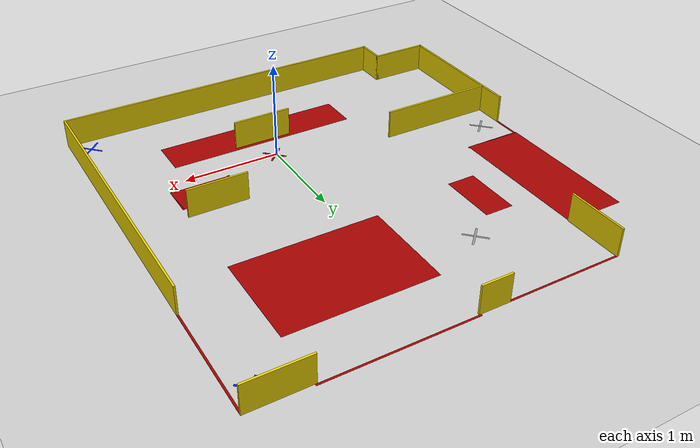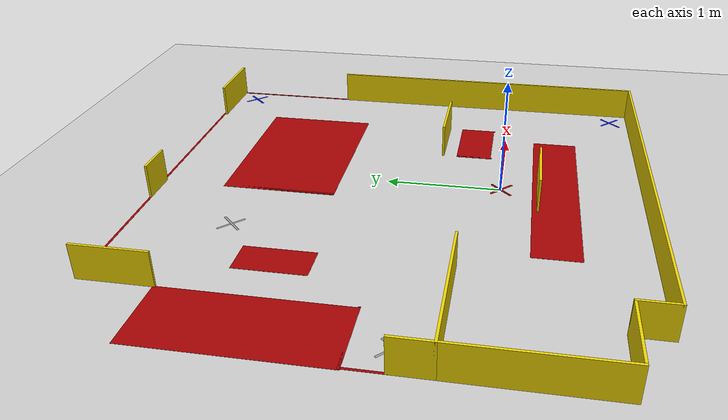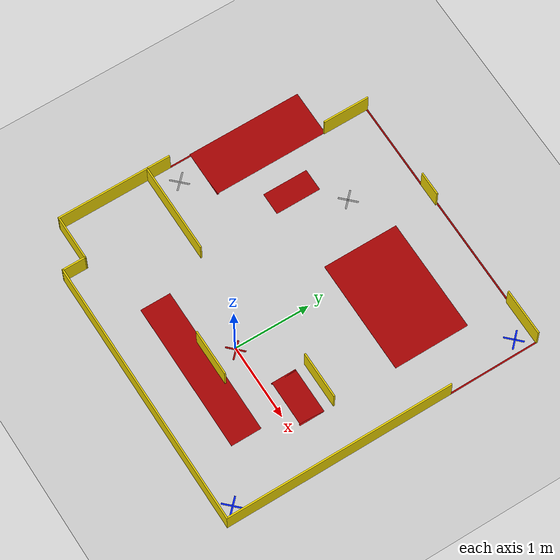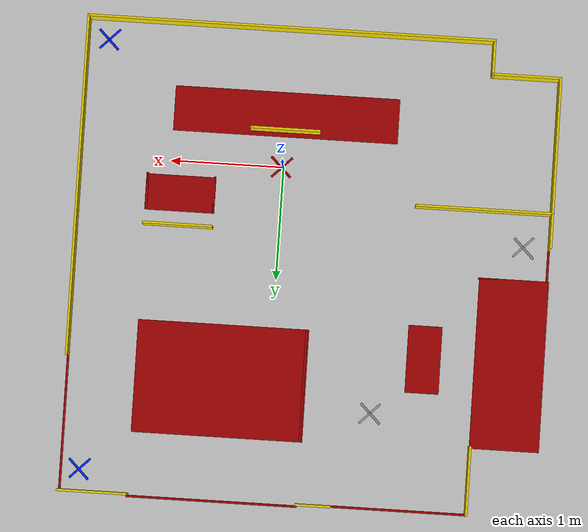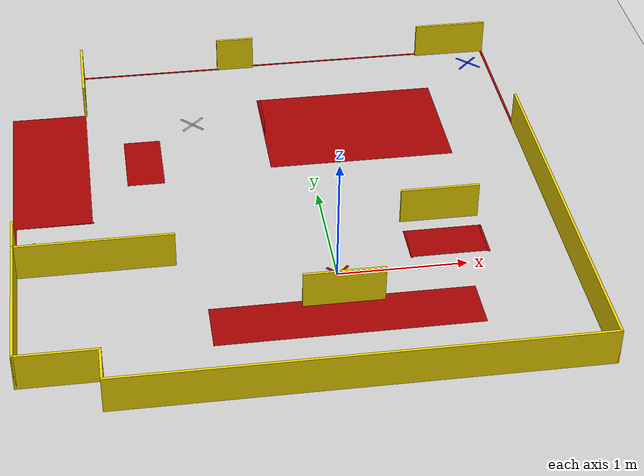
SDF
<sdf version="1.7">
 <world name="default">
  <scene><ambient>0.4 0.4 0.4 1</ambient><background>0.7 0.7 0.7 1</background><shadows>1</shadows></scene>
  <light name="sun" type="directional">
   <pose>0 0 10 0 -0 0</pose>
   <diffuse>0.8 0.8 0.8 1</diffuse>
   <specular>0.2 0.2 0.2 1</specular>
   <attenuation>
    <range>1000</range>
    <constant>0.9</constant>
    <linear>0.01</linear>
    <quadratic>0.001</quadratic>
   </attenuation>
   <direction>-0.5 0.1 -0.9</direction>
   <spot><inner_angle>0</inner_angle><outer_angle>0</outer_angle><falloff>0</falloff></spot>
  </light>
  <model name="ground_plane">
   <static>1</static>
   <link name="link">
    <collision name="collision">
     <geometry><plane><normal>0 0 1</normal><size>100 100</size></plane></geometry>
     <surface>
      <contact><collide_bitmask>65535</collide_bitmask></contact>
      <friction><ode><mu>100</mu><mu2>50</mu2></ode></friction>
     </surface>
    </collision>
    <visual name="visual">
     <cast_shadows>0</cast_shadows>
     <geometry><plane><normal>0 0 1</normal><size>100 100</size></plane></geometry>
     <material>
      <script><uri>file://media/materials/scripts/gazebo.material</uri><name>Gazebo/Grey</name></script>
     </material>
    </visual>
   </link>
  </model>
  <physics type="ode">
   <real_time_update_rate>1000</real_time_update_rate>
   <max_step_size>0.001</max_step_size>
   <real_time_factor>1</real_time_factor>
   <ode>
    <solver>
     <type>quick</type>
     <iters>150</iters>
     <precon_iters>0</precon_iters>
     <sor>1.4</sor>
     <use_dynamic_moi_rescaling>1</use_dynamic_moi_rescaling>
    </solver>
    <constraints>
     <cfm>1e-05</cfm>
     <erp>0.2</erp>
     <contact_max_correcting_vel>2000</contact_max_correcting_vel>
     <contact_surface_layer>0.01</contact_surface_layer>
    </constraints>
   </ode>
  </physics>
  <gravity>0 0 -9.8</gravity>
  <magnetic_field>6e-06 2.3e-05 -4.2e-05</magnetic_field>
  <atmosphere type="adiabatic"/>
  <spherical_coordinates>
   <surface_model>EARTH_WGS84</surface_model>
   <latitude_deg>0</latitude_deg>
   <longitude_deg>0</longitude_deg>
   <elevation>0</elevation>
   <heading_deg>0</heading_deg>
  </spherical_coordinates>
  <model name="Project2_Map">
   <pose>-0.301796 1.22065 -0 0 -0 0</pose>
   <link name="Wall_0">
    <collision name="Wall_0_Collision">
     <geometry><box><size>3.02 0.02 0.3</size></box></geometry>
     <pose>0 0 0.15 0 -0 0</pose>
    </collision>
    <visual name="Wall_0_Visual">
     <pose>0 0 0.15 0 -0 0</pose>
     <geometry><box><size>3.02 0.02 0.3</size></box></geometry>
     <material>
      <script><uri>file://media/materials/scripts/gazebo.material</uri><name>Gazebo/Grey</name></script>
      <ambient>0.929412 0.831373 0 1</ambient>
     </material>
     <meta><layer>0</layer></meta>
    </visual>
    <pose>2.1 -0.945 0 0 -0 1.5708</pose>
   </link>
   <link name="Wall_101">
    <collision name="Wall_101_Collision">
     <geometry><box><size>0.250517 0.02 0.000001</size></box></geometry>
     <pose>0 0 0.0005 0 -0 0</pose>
    </collision>
    <visual name="Wall_101_Visual">
     <pose>0 0 0.0005 0 -0 0</pose>
     <geometry><box><size>0.250517 0.02 0.000001</size></box></geometry>
     <material>
      <script><uri>file://media/materials/scripts/gazebo.material</uri><name>Gazebo/Grey</name></script>
      <ambient>0 0.12549 1 1</ambient>
     </material>
     <meta><layer>0</layer></meta>
    </visual>
    <pose>1.9215 -2.2665 0 0 -0 -0.785398</pose>
   </link>
   <link name="Wall_103">
    <collision name="Wall_103_Collision">
     <geometry><box><size>0.250517 0.02 0.000001</size></box></geometry>
     <pose>0 0 0.0005 0 -0 0</pose>
    </collision>
    <visual name="Wall_103_Visual">
     <pose>0 0 0.0005 0 -0 0</pose>
     <geometry><box><size>0.250517 0.02 0.000001</size></box></geometry>
     <material>
      <script><uri>file://media/materials/scripts/gazebo.material</uri><name>Gazebo/Grey</name></script>
      <ambient>0 0.12549 1 1</ambient>
     </material>
     <meta><layer>0</layer></meta>
    </visual>
    <pose>1.9415 1.5635 0 0 -0 -0.785398</pose>
   </link>
   <link name="Wall_105">
    <collision name="Wall_105_Collision">
     <geometry><box><size>0.250517 0.02 0.000001</size></box></geometry>
     <pose>0 0 0.0005 0 -0 0</pose>
    </collision>
    <visual name="Wall_105_Visual">
     <pose>0 0 0.0005 0 -0 0</pose>
     <geometry><box><size>0.250517 0.02 0.000001</size></box></geometry>
     <material>
      <script><uri>file://media/materials/scripts/gazebo.material</uri><name>Gazebo/Grey</name></script>
      <ambient>0 0 0 1</ambient>
     </material>
     <meta><layer>0</layer></meta>
    </visual>
    <pose>-0.6015 0.9135 0 0 -0 -2.35619</pose>
   </link>
   <link name="Wall_107">
    <collision name="Wall_107_Collision">
     <geometry><box><size>0.250517 0.02 0.000001</size></box></geometry>
     <pose>0 0 0.0005 0 -0 0</pose>
    </collision>
    <visual name="Wall_107_Visual">
     <pose>0 0 0.0005 0 -0 0</pose>
     <geometry><box><size>0.250517 0.02 0.000001</size></box></geometry>
     <material>
      <script><uri>file://media/materials/scripts/gazebo.material</uri><name>Gazebo/Grey</name></script>
      <ambient>0 0 0 1</ambient>
     </material>
     <meta><layer>0</layer></meta>
    </visual>
    <pose>-1.8715 -0.6465 0 0 -0 -2.35619</pose>
   </link>
   <link name="Wall_111">
    <collision name="Wall_111_Collision">
     <geometry><box><size>0.250517 0.02 0.000001</size></box></geometry>
     <pose>0 0 0.0005 0 -0 0</pose>
    </collision>
    <visual name="Wall_111_Visual">
     <pose>0 0 0.0005 0 -0 0</pose>
     <geometry><box><size>0.250517 0.02 0.001</size></box></geometry>
     <material>
      <script><uri>file://media/materials/scripts/gazebo.material</uri><name>Gazebo/Grey</name></script>
      <ambient>0.643137 0 0 1</ambient>
     </material>
     <meta><layer>0</layer></meta>
    </visual>
    <pose>0.3115 -1.2235 0 0 -0 0.785398</pose>
   </link>
   <link name="Wall_113">
    <collision name="Wall_113_Collision">
     <geometry><box><size>0.250517 0.02 0.000001</size></box></geometry>
     <pose>0 0 0.0005 0 -0 0</pose>
    </collision>
    <visual name="Wall_113_Visual">
     <pose>0 0 0.0005 0 -0 0</pose>
     <geometry><box><size>0.250517 0.02 0.000001</size></box></geometry>
     <material>
      <script><uri>file://media/materials/scripts/gazebo.material</uri><name>Gazebo/Grey</name></script>
      <ambient>0 0.12549 1 1</ambient>
     </material>
     <meta><layer>0</layer></meta>
    </visual>
    <pose>1.9115 -2.2735 0 0 -0 0.785398</pose>
   </link>
   <link name="Wall_115">
    <collision name="Wall_115_Collision">
     <geometry><box><size>0.250517 0.02 0.000001</size></box></geometry>
     <pose>0 0 0.0005 0 -0 0</pose>
    </collision>
    <visual name="Wall_115_Visual">
     <pose>0 0 0.0005 0 -0 0</pose>
     <geometry><box><size>0.250517 0.02 0.000001</size></box></geometry>
     <material>
      <script><uri>file://media/materials/scripts/gazebo.material</uri><name>Gazebo/Grey</name></script>
      <ambient>0 0.12549 1 1</ambient>
     </material>
     <meta><layer>0</layer></meta>
    </visual>
    <pose>1.9315 1.5565 0 0 -0 0.785398</pose>
   </link>
   <link name="Wall_12">
    <collision name="Wall_12_Collision">
     <geometry><box><size>1.0 0.02 0.000001</size></box></geometry>
     <pose>0 0 0.0005 0 -0 0</pose>
    </collision>
    <visual name="Wall_12_Visual">
     <pose>0 0 0.0005 0 -0 0</pose>
     <geometry><box><size>1.0 0.02 0.001</size></box></geometry>
     <material>
      <script><uri>file://media/materials/scripts/gazebo.material</uri><name>Gazebo/Grey</name></script>
      <ambient>0.643137 0 0 1</ambient>
     </material>
     <meta><layer>0</layer></meta>
    </visual>
    <pose>0 0.705 0 0 -0 1.5708</pose>
   </link>
   <link name="Wall_15">
    <collision name="Wall_15_Collision">
     <geometry><box><size>0.32 0.02 0.3</size></box></geometry>
     <pose>0 0 0.15 0 -0 0</pose>
    </collision>
    <visual name="Wall_15_Visual">
     <pose>0 0 0.15 0 -0 0</pose>
     <geometry><box><size>0.32 0.02 0.3</size></box></geometry>
     <material>
      <script><uri>file://media/materials/scripts/gazebo.material</uri><name>Gazebo/Grey</name></script>
      <ambient>0.929412 0.831373 0 1</ambient>
     </material>
     <meta><layer>0</layer></meta>
    </visual>
    <pose>-0.15 1.755 0 0 -0 3.14159</pose>
   </link>
   <link name="Wall_19">
    <collision name="Wall_19_Collision">
     <geometry><box><size>1.22 0.02 0.000001</size></box></geometry>
     <pose>0 0 0.0005 0 -0 0</pose>
    </collision>
    <visual name="Wall_19_Visual">
     <pose>0 0 0.0005 0 -0 0</pose>
     <geometry><box><size>1.22 0.02 0.001</size></box></geometry>
     <material>
      <script><uri>file://media/materials/scripts/gazebo.material</uri><name>Gazebo/Grey</name></script>
      <ambient>0.643137 0 0 1</ambient>
     </material>
     <meta><layer>0</layer></meta>
    </visual>
    <pose>-0.9 1.755 0 0 -0 3.14159</pose>
   </link>
   <link name="Wall_2">
    <collision name="Wall_2_Collision">
     <geometry><box><size>1.22 0.02 0.000001</size></box></geometry>
     <pose>0 0 0.0005 0 -0 0</pose>
    </collision>
    <visual name="Wall_2_Visual">
     <pose>0 0 0.0005 0 -0 0</pose>
     <geometry><box><size>1.22 0.02 0.001</size></box></geometry>
     <material>
      <script><uri>file://media/materials/scripts/gazebo.material</uri><name>Gazebo/Grey</name></script>
      <ambient>0.643137 0 0 1</ambient>
     </material>
     <meta><layer>0</layer></meta>
    </visual>
    <pose>2.1 1.155 0 0 -0 1.5708</pose>
   </link>
   <link name="Wall_21">
    <collision name="Wall_21_Collision">
     <geometry><box><size>0.62 0.02 0.3</size></box></geometry>
     <pose>0 0 0.15 0 -0 0</pose>
    </collision>
    <visual name="Wall_21_Visual">
     <pose>0 0 0.15 0 -0 0</pose>
     <geometry><box><size>0.62 0.02 0.3</size></box></geometry>
     <material>
      <script><uri>file://media/materials/scripts/gazebo.material</uri><name>Gazebo/Grey</name></script>
      <ambient>0.929412 0.831373 0 1</ambient>
     </material>
     <meta><layer>0</layer></meta>
    </visual>
    <pose>-1.5 1.455 0 0 -0 -1.5708</pose>
   </link>
   <link name="Wall_23">
    <collision name="Wall_23_Collision">
     <geometry><box><size>1.52 0.62 0.000001</size></box></geometry>
     <pose>0 -0.31 0.0005 0 -0 0</pose>
    </collision>
    <visual name="Wall_23_Visual">
     <pose>0 -0.31 0.0005 0 -0 0</pose>
     <geometry><box><size>1.52 0.62 0.001</size></box></geometry>
     <material>
      <script><uri>file://media/materials/scripts/gazebo.material</uri><name>Gazebo/Grey</name></script>
      <ambient>0.643137 0 0 1</ambient>
     </material>
     <meta><layer>0</layer></meta>
    </visual>
    <pose>-1.5 0.405 0 0 -0 -1.5708</pose>
   </link>
   <link name="Wall_26">
    <collision name="Wall_26_Collision">
     <geometry><box><size>0.62 0.02 0.000001</size></box></geometry>
     <pose>0 0 0.0005 0 -0 0</pose>
    </collision>
    <visual name="Wall_26_Visual">
     <pose>0 0 0.0005 0 -0 0</pose>
     <geometry><box><size>0.62 0.02 0.001</size></box></geometry>
     <material>
      <script><uri>file://media/materials/scripts/gazebo.material</uri><name>Gazebo/Grey</name></script>
      <ambient>0.643137 0 0 1</ambient>
     </material>
     <meta><layer>0</layer></meta>
    </visual>
    <pose>-1.8 -0.345 0 0 -0 3.14159</pose>
   </link>
   <link name="Wall_28">
    <collision name="Wall_28_Collision">
     <geometry><box><size>0.32 0.02 0.000001</size></box></geometry>
     <pose>0 0 0.0005 0 -0 0</pose>
    </collision>
    <visual name="Wall_28_Visual">
     <pose>0 0 0.0005 0 -0 0</pose>
     <geometry><box><size>0.32 0.02 0.001</size></box></geometry>
     <material>
      <script><uri>file://media/materials/scripts/gazebo.material</uri><name>Gazebo/Grey</name></script>
      <ambient>0.643137 0 0 1</ambient>
     </material>
     <meta><layer>0</layer></meta>
    </visual>
    <pose>-2.1 -0.495 0 0 -0 -1.5708</pose>
   </link>
   <link name="Wall_30">
    <collision name="Wall_30_Collision">
     <geometry><box><size>0.32 0.02 0.3</size></box></geometry>
     <pose>0 0 0.15 0 -0 0</pose>
    </collision>
    <visual name="Wall_30_Visual">
     <pose>0 0 0.15 0 -0 0</pose>
     <geometry><box><size>0.32 0.02 0.3</size></box></geometry>
     <material>
      <script><uri>file://media/materials/scripts/gazebo.material</uri><name>Gazebo/Grey</name></script>
      <ambient>0.929412 0.831373 0 1</ambient>
     </material>
     <meta><layer>0</layer></meta>
    </visual>
    <pose>-2.1 -0.795 0 0 -0 -1.5708</pose>
   </link>
   <link name="Wall_33">
    <collision name="Wall_33_Collision">
     <geometry><box><size>1.22 0.02 0.3</size></box></geometry>
     <pose>0 0 0.15 0 -0 0</pose>
    </collision>
    <visual name="Wall_33_Visual">
     <pose>0 0 0.15 0 -0 0</pose>
     <geometry><box><size>1.22 0.02 0.3</size></box></geometry>
     <material>
      <script><uri>file://media/materials/scripts/gazebo.material</uri><name>Gazebo/Grey</name></script>
      <ambient>0.929412 0.831373 0 1</ambient>
     </material>
     <meta><layer>0</layer></meta>
    </visual>
    <pose>-1.5 -0.945 0 0 -0 0</pose>
   </link>
   <link name="Wall_35">
    <collision name="Wall_35_Collision">
     <geometry><box><size>1.22 0.02 0.3</size></box></geometry>
     <pose>0 0 0.15 0 -0 0</pose>
    </collision>
    <visual name="Wall_35_Visual">
     <pose>0 0 0.15 0 -0 0</pose>
     <geometry><box><size>1.22 0.02 0.3</size></box></geometry>
     <material>
      <script><uri>file://media/materials/scripts/gazebo.material</uri><name>Gazebo/Grey</name></script>
      <ambient>0.929412 0.831373 0 1</ambient>
     </material>
     <meta><layer>0</layer></meta>
    </visual>
    <pose>-2.1 -1.545 0 0 -0 -1.5708</pose>
   </link>
   <link name="Wall_37">
    <collision name="Wall_37_Collision">
     <geometry><box><size>0.62 0.02 0.3</size></box></geometry>
     <pose>0 0 0.15 0 -0 0</pose>
    </collision>
    <visual name="Wall_37_Visual">
     <pose>0 0 0.15 0 -0 0</pose>
     <geometry><box><size>0.62 0.02 0.3</size></box></geometry>
     <material>
      <script><uri>file://media/materials/scripts/gazebo.material</uri><name>Gazebo/Grey</name></script>
      <ambient>0.929412 0.831373 0 1</ambient>
     </material>
     <meta><layer>0</layer></meta>
    </visual>
    <pose>-1.8 -2.145 0 0 -0 0</pose>
   </link>
   <link name="Wall_4">
    <collision name="Wall_4_Collision">
     <geometry><box><size>0.62 0.02 0.3</size></box></geometry>
     <pose>0 0 0.15 0 -0 0</pose>
    </collision>
    <visual name="Wall_4_Visual">
     <pose>0 0 0.15 0 -0 0</pose>
     <geometry><box><size>0.62 0.02 0.3</size></box></geometry>
     <material>
      <script><uri>file://media/materials/scripts/gazebo.material</uri><name>Gazebo/Grey</name></script>
      <ambient>0.929412 0.831373 0 1</ambient>
     </material>
     <meta><layer>0</layer></meta>
    </visual>
    <pose>1.8 1.755 0 0 -0 3.14159</pose>
   </link>
   <link name="Wall_41">
    <collision name="Wall_41_Collision">
     <geometry><box><size>0.32 0.02 0.3</size></box></geometry>
     <pose>0 0 0.15 0 -0 0</pose>
    </collision>
    <visual name="Wall_41_Visual">
     <pose>0 0 0.15 0 -0 0</pose>
     <geometry><box><size>0.32 0.02 0.3</size></box></geometry>
     <material>
      <script><uri>file://media/materials/scripts/gazebo.material</uri><name>Gazebo/Grey</name></script>
      <ambient>0.929412 0.831373 0 1</ambient>
     </material>
     <meta><layer>0</layer></meta>
    </visual>
    <pose>-1.5 -2.295 0 0 -0 -1.5708</pose>
   </link>
   <link name="Wall_44">
    <collision name="Wall_44_Collision">
     <geometry><box><size>3.62 0.02 0.3</size></box></geometry>
     <pose>0 0 0.15 0 -0 0</pose>
    </collision>
    <visual name="Wall_44_Visual">
     <pose>0 0 0.15 0 -0 0</pose>
     <geometry><box><size>3.62 0.02 0.3</size></box></geometry>
     <material>
      <script><uri>file://media/materials/scripts/gazebo.material</uri><name>Gazebo/Grey</name></script>
      <ambient>0.929412 0.831373 0 1</ambient>
     </material>
     <meta><layer>0</layer></meta>
    </visual>
    <pose>0.3 -2.445 0 0 -0 0</pose>
   </link>
   <link name="Wall_51">
    <collision name="Wall_51_Collision">
     <geometry><box><size>2.0 0.4 0.000001</size></box></geometry>
     <pose>0 -0.15 0.0005 0 -0 0</pose>
    </collision>
    <visual name="Wall_51_Visual">
     <pose>0 -0.15 0.0005 0 -0 0</pose>
     <geometry><box><size>2.0 0.4 0.001</size></box></geometry>
     <material>
      <script><uri>file://media/materials/scripts/gazebo.material</uri><name>Gazebo/Grey</name></script>
      <ambient>0.643137 0 0 1</ambient>
     </material>
     <meta><layer>0</layer></meta>
    </visual>
    <pose>0.3 -1.845 0 0 -0 3.14159</pose>
   </link>
   <link name="Wall_58">
    <collision name="Wall_58_Collision">
     <geometry><box><size>0.62 0.02 0.3</size></box></geometry>
     <pose>0 0 0.15 0 -0 0</pose>
    </collision>
    <visual name="Wall_58_Visual">
     <pose>0 0 0.15 0 -0 0</pose>
     <geometry><box><size>0.62 0.02 0.3</size></box></geometry>
     <material>
      <script><uri>file://media/materials/scripts/gazebo.material</uri><name>Gazebo/Grey</name></script>
      <ambient>0.929412 0.831373 0 1</ambient>
     </material>
     <meta><layer>0</layer></meta>
    </visual>
    <pose>0.3 -1.545 0 0 -0 0</pose>
   </link>
   <link name="Wall_6">
    <collision name="Wall_6_Collision">
     <geometry><box><size>1 1.52 0.000001</size></box></geometry>
     <pose>0 -0.76 0.0005 0 -0 0</pose>
    </collision>
    <visual name="Wall_6_Visual">
     <pose>0 -0.76 0.0005 0 -0 0</pose>
     <geometry><box><size>1 1.52 0.001</size></box></geometry>
     <material>
      <script><uri>file://media/materials/scripts/gazebo.material</uri><name>Gazebo/Grey</name></script>
      <ambient>0.643137 0 0 1</ambient>
     </material>
     <meta><layer>0</layer></meta>
    </visual>
    <pose>1.5 0.705 0 0 -0 -1.5708</pose>
   </link>
   <link name="Wall_66">
    <collision name="Wall_66_Collision">
     <geometry><box><size>0.32 0.02 0.000001</size></box></geometry>
     <pose>0 0 0.0005 0 -0 0</pose>
    </collision>
    <visual name="Wall_66_Visual">
     <pose>0 0 0.0005 0 -0 0</pose>
     <geometry><box><size>0.32 0.02 0.001</size></box></geometry>
     <material>
      <script><uri>file://media/materials/scripts/gazebo.material</uri><name>Gazebo/Grey</name></script>
      <ambient>0.643137 0 0 1</ambient>
     </material>
     <meta><layer>0</layer></meta>
    </visual>
    <pose>1.5 -0.945 0 0 -0 -1.5708</pose>
   </link>
   <link name="Wall_67">
    <collision name="Wall_67_Collision">
     <geometry><box><size>0.62 0.32 0.000001</size></box></geometry>
     <pose>0 -0.31 0.0005 0 -0 0</pose>
    </collision>
    <visual name="Wall_67_Visual">
     <pose>0 -0.31 0.0005 0 -0 0</pose>
     <geometry><box><size>0.62 0.32 0.001</size></box></geometry>
     <material>
      <script><uri>file://media/materials/scripts/gazebo.material</uri><name>Gazebo/Grey</name></script>
      <ambient>0.643137 0 0 1</ambient>
     </material>
     <meta><layer>0</layer></meta>
    </visual>
    <pose>1.2 -1.245 0 0 -0 3.14159</pose>
   </link>
   <link name="Wall_68">
    <collision name="Wall_68_Collision">
     <geometry><box><size>0.32 0.02 0.000001</size></box></geometry>
     <pose>0 0 0.0005 0 -0 0</pose>
    </collision>
    <visual name="Wall_68_Visual">
     <pose>0 0 0.0005 0 -0 0</pose>
     <geometry><box><size>0.32 0.02 0.001</size></box></geometry>
     <material>
      <script><uri>file://media/materials/scripts/gazebo.material</uri><name>Gazebo/Grey</name></script>
      <ambient>0.643137 0 0 1</ambient>
     </material>
     <meta><layer>0</layer></meta>
    </visual>
    <pose>0.9 -0.945 0 0 -0 1.5708</pose>
   </link>
   <link name="Wall_69">
    <collision name="Wall_69_Collision">
     <geometry><box><size>0.62 0.02 0.3</size></box></geometry>
     <pose>0 0 0.15 0 -0 0</pose>
    </collision>
    <visual name="Wall_69_Visual">
     <pose>0 0 0.15 0 -0 0</pose>
     <geometry><box><size>0.62 0.02 0.3</size></box></geometry>
     <material>
      <script><uri>file://media/materials/scripts/gazebo.material</uri><name>Gazebo/Grey</name></script>
      <ambient>0.929412 0.831373 0 1</ambient>
     </material>
     <meta><layer>0</layer></meta>
    </visual>
    <pose>1.2 -0.645 0 0 -0 0</pose>
   </link>
   <link name="Wall_73">
    <collision name="Wall_73_Collision">
     <geometry><box><size>0.6 0.3 0.000001</size></box></geometry>
     <pose>0 0.15 0.0005 0 -0 0</pose>
    </collision>
    <visual name="Wall_73_Visual">
     <pose>0 0.15 0.0005 0 -0 0</pose>
     <geometry><box><size>0.6 0.3 0.001</size></box></geometry>
     <material>
      <script><uri>file://media/materials/scripts/gazebo.material</uri><name>Gazebo/Grey</name></script>
      <ambient>0.643137 0 0 1</ambient>
     </material>
     <meta><layer>0</layer></meta>
    </visual>
    <pose>-0.9 0.405 0 0 -0 1.5708</pose>
   </link>
   <link name="Wall_8">
    <collision name="Wall_8_Collision">
     <geometry><box><size>1.52 0.02 0.000001</size></box></geometry>
     <pose>0 -2.12 0.0005 0 -0 0</pose>
    </collision>
    <visual name="Wall_8_Visual">
     <pose>0 -2.12 0.0005 0 -0 0</pose>
     <geometry><box><size>1.52 0.02 0.001</size></box></geometry>
     <material>
      <script><uri>file://media/materials/scripts/gazebo.material</uri><name>Gazebo/Grey</name></script>
      <ambient>0.643137 0 0 1</ambient>
     </material>
     <meta><layer>0</layer></meta>
    </visual>
    <pose>0.75 -0.345 0 0 -0 3.14159</pose>
   </link>
   <link name="Wall_94">
    <collision name="Wall_94_Collision">
     <geometry><box><size>0.250517 0.02 0.000001</size></box></geometry>
     <pose>0 0 0.0005 0 -0 0</pose>
    </collision>
    <visual name="Wall_94_Visual">
     <pose>0 0 0.0005 0 -0 0</pose>
     <geometry><box><size>0.250517 0.02 0.000001</size></box></geometry>
     <material>
      <script><uri>file://media/materials/scripts/gazebo.material</uri><name>Gazebo/Grey</name></script>
      <ambient>0 0 0 1</ambient>
     </material>
     <meta><layer>0</layer></meta>
    </visual>
    <pose>-0.6085 0.9135 0 0 -0 -0.785398</pose>
   </link>
   <link name="Wall_97">
    <collision name="Wall_97_Collision">
     <geometry><box><size>0.25 0.02 0.000001</size></box></geometry>
     <pose>0 0 0.0005 0 -0 0</pose>
    </collision>
    <visual name="Wall_97_Visual">
     <pose>0 0 0.0005 0 -0 0</pose>
     <geometry><box><size>0.25 0.02 0.000001</size></box></geometry>
     <material>
      <script><uri>file://media/materials/scripts/gazebo.material</uri><name>Gazebo/Grey</name></script>
      <ambient>0 0 0 1</ambient>
     </material>
     <meta><layer>0</layer></meta>
    </visual>
    <pose>-1.8785 -0.6365 0 0 -0 -0.785398</pose>
   </link>
   <link name="Wall_99">
    <collision name="Wall_99_Collision">
     <geometry><box><size>0.250517 0.02 0.000001</size></box></geometry>
     <pose>0 0 0.0005 0 -0 0</pose>
    </collision>
    <visual name="Wall_99_Visual">
     <pose>0 0 0.0005 0 -0 0</pose>
     <geometry><box><size>0.250517 0.02 0.001</size></box></geometry>
     <material>
      <script><uri>file://media/materials/scripts/gazebo.material</uri><name>Gazebo/Grey</name></script>
      <ambient>0.643137 0 0 1</ambient>
     </material>
     <meta><layer>0</layer></meta>
    </visual>
    <pose>0.3215 -1.2265 0 0 -0 -0.785398</pose>
   </link>
   <static>1</static>
  </model>
 </world>
</sdf>
